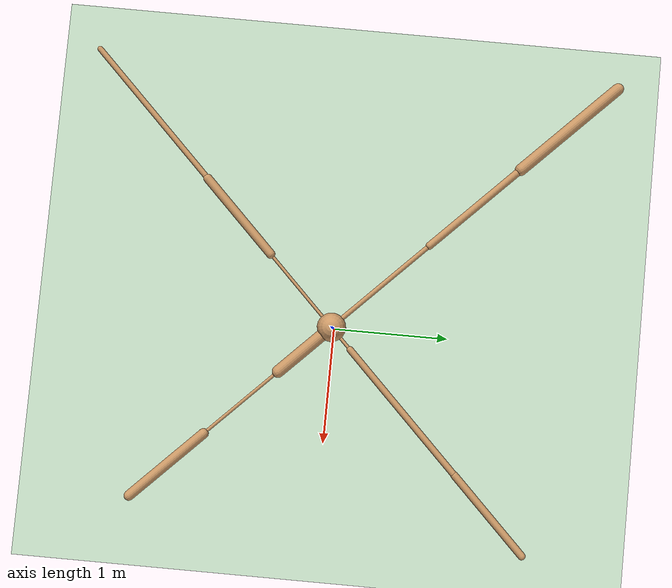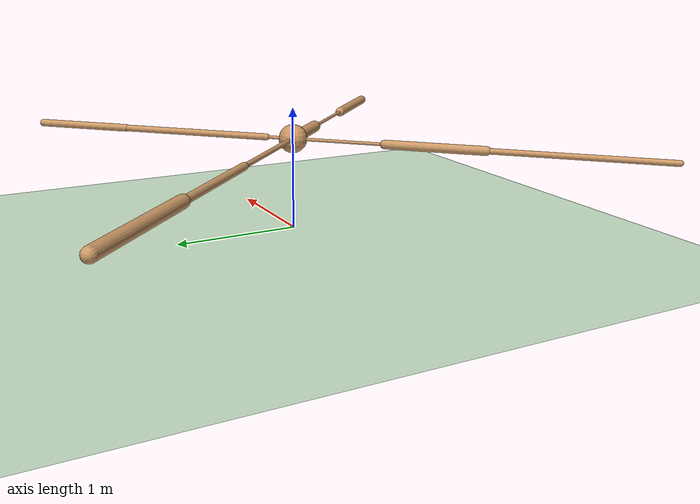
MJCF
<mujoco model="ant">
  <compiler angle="degree" coordinate="local" inertiafromgeom="true" />
  <option integrator="RK4" timestep="0.01" />
  <custom>
    <numeric data="0.0 0.0 0.55 1.0 0.0 0.0 0.0 0.0 1.0 0.0 -1.0 0.0 -1.0 0.0 1.0" name="init_qpos" />
  </custom>
  <default>
    <joint armature="1" damping="1" limited="true" />
    <geom conaffinity="0" condim="3" density="5.0" friction="1 0.5 0.5" margin="0.01" rgba="0.8 0.6 0.4 1" />
  </default>
  <asset>
    <texture builtin="gradient" height="100" rgb1="1 1 1" rgb2="0 0 0" type="skybox" width="100" />
    <texture builtin="flat" height="1278" mark="cross" markrgb="1 1 1" name="texgeom" random="0.01" rgb1="0.8 0.6 0.4" rgb2="0.8 0.6 0.4" type="cube" width="127" />
    <texture builtin="checker" height="100" name="texplane" rgb1="0 0 0" rgb2="0.8 0.8 0.8" type="2d" width="100" />
    <material name="MatPlane" reflectance="0.5" shininess="1" specular="1" texrepeat="60 60" texture="texplane" />
    <material name="geom" texture="texgeom" texuniform="true" />
  </asset>
  <worldbody>
    <light cutoff="100" diffuse="1 1 1" dir="-0 0 -1.3" directional="true" exponent="1" pos="0 0 1.3" specular=".1 .1 .1" />
    <geom conaffinity="1" condim="3" material="MatPlane" name="floor" pos="0 0 0" rgba="0.8 0.9 0.8 1" size="40 40 40" type="plane" />
    <body name="torso" pos="0 0 0.75">
      <camera name="track" mode="trackcom" pos="0 -11 5" xyaxes="1 0 0 0 0.5 1" />
      <geom name="torso_geom" pos="0 0 0" size="0.11614754796028137" type="sphere" />
      <joint armature="0" damping="0" limited="false" margin="0.01" name="root" pos="0 0 0" type="free" />
      <body name="front_left_leg" pos="0 0 0">
        <geom fromto="0 0 0 0.1636570692062378 0.1636570692062378 0" name="aux_1_geom" size="0.013336475938558578" type="capsule" />
        <body name="aux_1" pos="0.1636570692062378 0.1636570692062378 0">
          <joint axis="0 0 1" name="hip_1" pos="0.0 0.0 0.0" range="-30 30" type="hinge" />
          <geom fromto="0 0 0 0.91117924451828 0.91117924451828 0" name="left_leg_geom" size="0.027015648782253265" type="capsule" />
          <body name="left_leg_geom_aux" pos="0.91117924451828 0.91117924451828 0">
            <joint axis="-1 1 0" name="ankle_1" pos="0.0 0.0 0.0" range="30 70" type="hinge" />
            <geom fromto="0 0 0 0.5809081196784973 0.5809081196784973 0" name="left_ankle_geom" size="0.03083733655512333" type="capsule" />
          </body>
        </body>
      </body>
      <body name="front_right_leg" pos="0 0 0">
        <geom fromto="0 0 0 -0.72139573097229 0.72139573097229 0" name="aux_2_geom" size="0.019576016813516617" type="capsule" />
        <body name="aux_2" pos="-0.72139573097229 0.72139573097229 0">
          <joint axis="0 0 1" name="hip_2" pos="0.0 0.0 0.0" range="-30 30" type="hinge" />
          <geom fromto="0 0 0 -0.6777393817901611 0.6777393817901611 0" name="right_leg_geom" size="0.030295483767986298" type="capsule" />
          <body name="right_leg_geom_aux" pos="-0.6777393817901611 0.6777393817901611 0">
            <joint axis="1 1 0" name="ankle_2" pos="0.0 0.0 0.0" range="-70 -30" type="hinge" />
            <geom fromto="0 0 0 -0.7262442111968994 0.7262442111968994 0" name="right_ankle_geom" size="0.04787611588835716" type="capsule" />
          </body>
        </body>
      </body>
      <body name="back_leg" pos="0 0 0">
        <geom fromto="0 0 0 -0.5387852191925049 -0.5387852191925049 0" name="aux_3_geom" size="0.012963267974555492" type="capsule" />
        <body name="aux_3" pos="-0.5387852191925049 -0.5387852191925049 0">
          <joint axis="0 0 1" name="hip_3" pos="0.0 0.0 0.0" range="-30 30" type="hinge" />
          <geom fromto="0 0 0 -0.5610480308532715 -0.5610480308532715 0" name="back_leg_geom" size="0.03625684976577759" type="capsule" />
          <body name="back_leg_geom_aux" pos="-0.5610480308532715 -0.5610480308532715 0">
            <joint axis="-1 1 0" name="ankle_3" pos="0.0 0.0 0.0" range="-70 -30" type="hinge" />
            <geom fromto="0 0 0 -0.9717185497283936 -0.9717185497283936 0" name="third_ankle_geom" size="0.023244068026542664" type="capsule" />
          </body>
        </body>
      </body>
      <body name="right_back_leg" pos="0 0 0">
        <geom fromto="0 0 0 0.389005571603775 -0.389005571603775 0" name="aux_4_geom" size="0.04935847222805023" type="capsule" />
        <body name="aux_4" pos="0.389005571603775 -0.389005571603775 0">
          <joint axis="0 0 1" name="hip_4" pos="0.0 0.0 0.0" range="-30 30" type="hinge" />
          <geom fromto="0 0 0 0.5419539213180542 -0.5419539213180542 0" name="rightback_leg_geom" size="0.013419728726148605" type="capsule" />
          <body name="rightback_leg_geom_aux" pos="0.5419539213180542 -0.5419539213180542 0">
            <joint axis="1 1 0" name="ankle_4" pos="0.0 0.0 0.0" range="30 70" type="hinge" />
            <geom fromto="0 0 0 0.5357260704040527 -0.5357260704040527 0" name="fourth_ankle_geom" size="0.040949586778879166" type="capsule" />
          </body>
        </body>
      </body>
    </body>
  </worldbody>
  <actuator>
    <motor ctrllimited="true" ctrlrange="-1.0 1.0" joint="hip_4" gear="150" />
    <motor ctrllimited="true" ctrlrange="-1.0 1.0" joint="ankle_4" gear="150" />
    <motor ctrllimited="true" ctrlrange="-1.0 1.0" joint="hip_1" gear="150" />
    <motor ctrllimited="true" ctrlrange="-1.0 1.0" joint="ankle_1" gear="150" />
    <motor ctrllimited="true" ctrlrange="-1.0 1.0" joint="hip_2" gear="150" />
    <motor ctrllimited="true" ctrlrange="-1.0 1.0" joint="ankle_2" gear="150" />
    <motor ctrllimited="true" ctrlrange="-1.0 1.0" joint="hip_3" gear="150" />
    <motor ctrllimited="true" ctrlrange="-1.0 1.0" joint="ankle_3" gear="150" />
  </actuator>
</mujoco>
